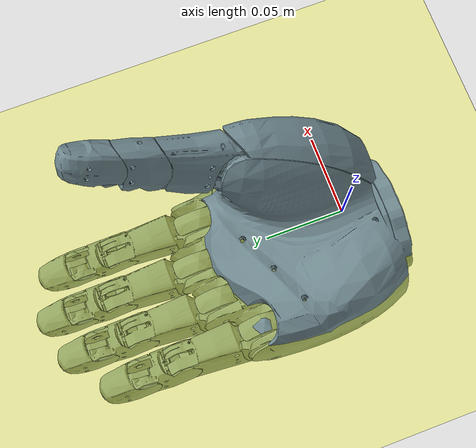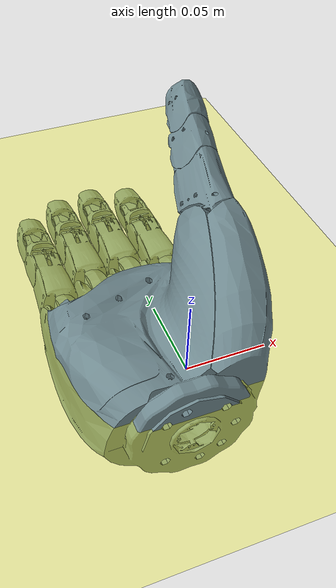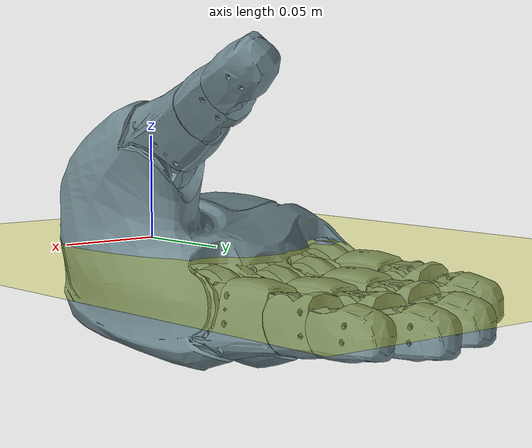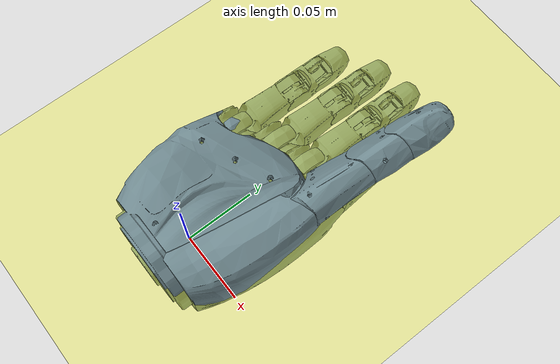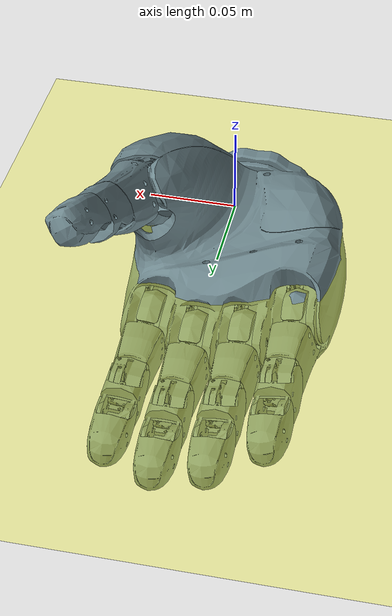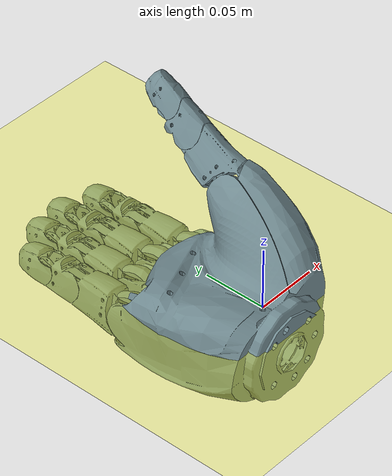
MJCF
<mujoco model="BHAM">
    <option viscosity = "1"/>
    <worldbody>
        <camera fovy="75" name="BHAM.fixed2" pos="1 -1 1" quat='0.924 0.383 0 0' />
        <camera fovy="75" name="BHAM.fixed" pos="1 0 1" euler="0 0 0" />

        <body childclass="BHAM" name="BHAM.floor" pos="0 0 0">
            <inertial diaginertia="0 0 0" mass="0" pos="0 0 0" />
            <geom pos="0 0 0" rgba="1 1 0 1" size="0.5 0.5 0.025" type="plane" friction="0" />
        </body>
        <body childclass="BHAM" name="BHAM.forearm" pos="0 0 0">
            <inertial diaginertia="3.35103e-06 3.35103e-06 5.02655e-06" mass="1" pos="0 0 0" />
            <joint name="BHAM.ARTx" pos="0 0 0" axis="1 0 0" type="slide" range="-2.0 2.0"           damping="80"/>
            <joint name="BHAM.ARTy" pos="0 0 0" axis="0 1 0" type="slide" range="-2 2"          damping="80"/>
            <joint name="BHAM.ARTz" pos="0 0 0" axis="0 0 1" type="slide" range="-1 1"          damping="80"/>
            <joint name="BHAM.ARRx" pos="0 0 0" axis="1 0 0" type="hinge" range="-3.14159 3.14159"  damping="1"  />
            <joint name="BHAM.ARRy" pos="0 0 0" axis="0 1 0" type="hinge" range="-3.14159 3.14159"  damping="1"  />
            <joint name="BHAM.ARRz" pos="0 0 0" axis="0 0 1" type="hinge" range="-3.14159 3.14159"  damping="1"  />
            <body name="BHAM.palm" pos="0 0 0" quat="1 0 0 0">
                <inertial diaginertia="0.00149093 0.00115965 0.00102401" mass="0.801064" pos="-0.00433581 0.0278728 -0.00961453" quat="0.0172605 0.553611 0.101044 0.826443" />
                <geom conaffinity="0" contype="0" mass="0" mesh="BHAM.righthandbase" name="BHAM.righthandbase" type="mesh" />
                <geom mesh="BHAM.palm1" mass="0.9" name="BHAM.palm1" rgba="0 0 0 0" type="mesh" />
                <geom mesh="BHAM.palm2" mass="0.2485" name="BHAM.palm2" rgba="0 0 0 0" type="mesh" />
                <body name="BHAM.thumb0" pos="0 0 0">
                    <inertial diaginertia="1.20581e-5 9.65467e-6 4.22719e-6" mass="0.0176" pos="0.034312 0.0535929 0.0406575" quat="0 0 0 1" />
                    <joint axis="0.549586 -0.456218 0.699872" name="BHAM.thumb_ABD" pos="0.036754 0.056714 0.04474" range="-1 1" />
                    <geom mesh="BHAM.thumb_basecover" name="BHAM.thumb_basecover" type="mesh" />
                    <body name="BHAM.thumb1" pos="0 0 0">
                        <inertial diaginertia="2.47814e-5 2.07636e-5 9.90171e-6" mass="0.0232" pos="0.0437866 0.0847763 0.0603761" quat="0.601855 0.742582 0.23387 -0.177897" />
                        <joint axis="-0.8142 -0.104803 0.571047" name="BHAM.thumb_IN" pos="0.036754 0.056714 0.04474" range="-0.1 0.8" />
                        <geom mesh="BHAM.thumb_proximalp" name="BHAM.thumb_proximalp" type="mesh" />
                        <body name="BHAM.thumb2" pos="0 0 0">
                            <inertial diaginertia="1.17398e-5 1.17052e-5 7.00527e-6" mass="0.0158" pos="0.0503579 0.113562 0.0743528" quat="0.583097 0.776931 -0.222353 0.0832728" />
                            <joint axis="-0.8142 -0.104803 0.571047" name="BHAM.thumb_OUT" pos="0.046615 0.10503 0.06708" range="0.087266 1.2217" />
                            <geom mesh="BHAM.thumb_middlep" name="BHAM.thumb_middlep" type="mesh" />
                            <body name="BHAM.thumb3" pos="0 0 0">
                                <inertial diaginertia="9.09431e-6 8.84306e-6 5.34772e-6" mass="0.0137" pos="0.0539685 0.137464 0.0841294" quat="0.539226 0.69153 -0.410629 0.249812" />
                                <joint axis="-0.8142 -0.104803 0.571047" name="BHAM.thumb_TIP" pos="0.050016 0.12692 0.078691" range="0.087266 1.2217" />
                                <geom mesh="BHAM.thumb_distalp" name="BHAM.thumb_distalp" type="mesh" />
                            </body>
                        </body>
                    </body>
                </body>
                <body name="BHAM.fore0" pos="0 0 0">
                    <inertial diaginertia="1.20581e-5 9.65469e-6 4.22719e-6" mass="0.0176" pos="0.0291766 0.0808036 -0.0172436" quat="0.97727 -0.207392 -0.0430513 -0.00881044" />
                    <joint axis="0.087156 0 -0.996195" name="BHAM.fore_ABD" pos="0.029434 0.08577 -0.020007" range="-0.2618 0.2618" />
                    <geom mesh="BHAM.fore_basecover" name="BHAM.fore_basecover" type="mesh" />
                    <body name="BHAM.fore1" pos="0 0 0">
                        <inertial diaginertia="2.47814e-5 2.07636e-5 9.90172e-6" mass="0.0232" pos="0.0298699 0.118593 -0.0219824" quat="0.587334 0.807596 -0.044716 0.0287853" />
                        <joint axis="0.996195 0 0.087156" name="BHAM.fore_IN" pos="0.029434 0.08577 -0.020007" range="0.087266 1.0471" />
                        <geom mesh="BHAM.fore_proximalp" name="BHAM.fore_proximalp" type="mesh" />
                        <body name="BHAM.fore2" pos="0 0 0">
                            <inertial diaginertia="1.17398e-5 1.17052e-5 7.00528e-6" mass="0.0158" pos="0.0295082 0.151257 -0.022276" quat="0.538583 0.638827 -0.403273 0.373094" />
                            <joint axis="0.996195 0 0.087156" name="BHAM.fore_OUT" pos="0.029014 0.1399 -0.019052" range="0.087266 1.2217" />
                            <geom mesh="BHAM.fore_middlep" name="BHAM.fore_middlep" type="mesh" />
                            <body name="BHAM.fore3" pos="0 0 0">
                                <inertial diaginertia="9.09435e-6 8.84309e-6 5.34772e-6" mass="0.0137" pos="0.0294646 0.17725 -0.0201939" quat="0.416648 0.511765 -0.56981 0.489712" />
                                <joint axis="0.996195 0 0.087156" name="BHAM.fore_TIP" pos="0.030576 0.16486 -0.018924" range="0.087266 1.2217" />
                                <geom mesh="BHAM.fore_distalp" name="BHAM.fore_distalp" type="mesh" />
                            </body>
                        </body>
                    </body>
                </body>
                <body name="BHAM.middle0" pos="0 0 0">
                    <inertial diaginertia="1.20581e-5 9.65469e-6 4.2272e-6" mass="0.0176" pos="0.00261974 0.0908037 -0.0184136" quat="0.978218 -0.20758 -0.000382091 0.000244214" />
                    <joint axis="0 0 -1" name="BHAM.middle_ABD" pos="0.0026354 0.09577 -0.021189" range="-0.2618 0.2618" />
                    <geom mesh="BHAM.middle_basecover" name="BHAM.middle_basecover" type="mesh" />
                    <body name="BHAM.middle1" pos="0 0 0">
                        <inertial diaginertia="2.47814e-5 2.07636e-5 9.90172e-6" mass="0.0232" pos="0.00289744 0.128593 -0.0231948" quat="0.588725 0.808083 -0.0190541 -0.00646947" />
                        <joint axis="1 0 0" name="BHAM.middle_IN" pos="0.0026354 0.09577 -0.021189" range="0.087266 1.0471" />
                        <geom mesh="BHAM.middle_proximalp" name="BHAM.middle_proximalp" type="mesh" />
                        <body name="BHAM.middle2" pos="0 0 0">
                            <inertial diaginertia="1.17397e-5 1.17051e-5 7.00528e-6" mass="0.0158" pos="0.00251156 0.161257 -0.0234557" quat="0.555649 0.654479 -0.379419 0.344894" />
                            <joint axis="1 0 0" name="BHAM.middle_OUT" pos="0.0023 0.1499 -0.020201" range="0.087266 1.2217" />
                            <geom mesh="BHAM.middle_middlep" name="BHAM.middle_middlep" type="mesh" />
                            <body name="BHAM.middle3" pos="0 0 0">
                                <inertial diaginertia="9.09435e-6 8.8431e-6 5.34772e-6" mass="0.0137" pos="0.00264958 0.18725 -0.0213778" quat="0.441105 0.532638 -0.551095 0.466924" />
                                <joint axis="1 0 0" name="BHAM.middle_TIP" pos="0.003867 0.17486 -0.02021" range="0.087266 1.2217" />
                                <geom mesh="BHAM.middle_distalp" name="BHAM.middle_distalp" type="mesh" />
                                <site name="mid_finger_center" pos="0.003867 0.17486 -0.02021"/>
                            </body>
                        </body>
                    </body>
                </body>
                <body name="BHAM.ring0" pos="0 0 0">
                    <inertial diaginertia="1.20581e-5 9.6547e-6 4.2272e-6" mass="0.0176" pos="-0.023938 0.0856037 -0.0172645" quat="0.977304 -0.207372 0.0422874 0.0092984" />
                    <joint axis="-0.0774016 0 -0.997" name="BHAM.ring_ABD" pos="-0.024164 0.09057 -0.020031" range="-0.2618 0.2618" />
                    <geom mesh="BHAM.ring_basecover" name="BHAM.ring_basecover" type="mesh" />
                    <body name="BHAM.ring1" pos="0 0 0">
                        <inertial diaginertia="2.47814e-5 2.07636e-5 9.90172e-6" mass="0.0232" pos="-0.0240781 0.123393 -0.0220517" quat="0.588996 0.807031 0.0066435 -0.0417111" />
                        <joint axis="0.997 0 -0.0774016" name="BHAM.ring_IN" pos="-0.024164 0.09057 -0.020031" range="0.087266 1.0471" />
                        <geom mesh="BHAM.ring_proximalp" name="BHAM.ring_proximalp" type="mesh" />
                        <body name="BHAM.ring2" pos="0 0 0">
                            <inertial diaginertia="1.17397e-5 1.17051e-5 7.00528e-6" mass="0.0158" pos="-0.0244852 0.156057 -0.022278" quat="0.571688 0.668919 -0.354786 0.315986" />
                            <joint axis="0.997 0 -0.0774016" name="BHAM.ring_OUT" pos="-0.024412 0.1447 -0.019017" range="0.087266 1.2217" />
                            <geom mesh="BHAM.ring_middlep" name="BHAM.ring_middlep" type="mesh" />
                            <body name="BHAM.ring3" pos="0 0 0">
                                <inertial diaginertia="9.09435e-6 8.8431e-6 5.34772e-6" mass="0.0137" pos="-0.0241666 0.18205 -0.02022" quat="0.464721 0.552497 -0.531331 0.443248" />
                                <joint axis="0.997 0 -0.0774016" name="BHAM.ring_TIP" pos="-0.022852 0.16966 -0.019162" range="0.087266 1.2217" />
                                <geom mesh="BHAM.ring_distalp" name="BHAM.ring_distalp" type="mesh" />
                            </body>
                        </body>
                    </body>
                </body>
                <body name="BHAM.little0" pos="0 0 0">
                    <inertial diaginertia="1.20581e-5 9.65468e-6 4.22719e-6" mass="0.0176" pos="-0.0502945 0.0666036 -0.0138051" quat="0.97453 -0.206766 0.0848757 0.018333" />
                    <joint axis="-0.166745 0 -0.986" name="BHAM.little_ABD" pos="-0.050761 0.07157 -0.016541" range="-0.2618 0.2618" />
                    <geom mesh="BHAM.little_basecover" name="BHAM.little_basecover" type="mesh" />
                    <body name="BHAM.little1" pos="0 0 0">
                        <inertial diaginertia="2.47814e-5 2.07635e-5 9.90174e-6" mass="0.0232" pos="-0.0508513 0.104393 -0.0185619" quat="0.588146 0.804443 0.0323287 -0.0768729" />
                        <joint axis="0.986 0 -0.166745" name="BHAM.little_IN" pos="-0.050761 0.07157 -0.016541" range="0.087266 1.0471" />
                        <geom mesh="BHAM.little_proximalp" name="BHAM.little_proximalp" type="mesh" />
                        <body name="BHAM.little2" pos="0 0 0">
                            <inertial diaginertia="1.17397e-5 1.17051e-5 7.00528e-6" mass="0.0158" pos="-0.0512766 0.137057 -0.0187519" quat="0.586633 0.682081 -0.329479 0.28648" />
                            <joint axis="0.986 0 -0.166745" name="BHAM.little_OUT" pos="-0.05092 0.1257 -0.015509" range="0.087266 1.2217" />
                            <geom mesh="BHAM.little_middlep" name="BHAM.little_middlep" type="mesh" />
                            <body name="BHAM.little3" pos="0 0 0">
                                <inertial diaginertia="9.09435e-6 8.84309e-6 5.34772e-6" mass="0.0137" pos="-0.0507799 0.16305 -0.0167295" quat="0.487456 0.571303 -0.510555 0.418728" />
                                <joint axis="0.986 0 -0.166745" name="BHAM.little_TIP" pos="-0.049378 0.15066 -0.01579" range="0.087266 1.2217" />
                                <geom mesh="BHAM.little_distalp" name="BHAM.little_distalp" type="mesh" />
                            </body>
                        </body>
                    </body>
                </body>
            </body>
        </body>
    </worldbody>
    <compiler angle="radian" meshdir="./"/>
    <option apirate="50" cone="elliptic" impratio="1.75" integrator="RK4" iterations="50" tolerance="1e-10" />
    <size nconmax="500" njmax="5000" nstack="500000" />
    <statistic center="0 -0.2 0.2" extent="1" />
    <default class="main">
        <default class="BHAM">
            <joint armature="0.001" damping="0.2" limited="true" />
            <geom condim="4" friction="1 0.005 0.005" group="1" material="BHAM.MatMesh" rgba="0.44 0.54 0.565 1" solref="0.008 1" />
            <site group="3" material="BHAM.MatTouch" type="ellipsoid" />
            <general biasprm="0 -1 0 0 0 0 0 0 0 0" biastype="affine" ctrllimited="true" forcelimited="true" forcerange="-1.25 1.25" />
        </default>
        <default class="IMU">
            <site group="4" material="BHAM.MatIMU" type="box" />
        </default>
        <default class="free">
            <joint type="free" />
        </default>
    </default>
    <asset>
        <texture builtin="gradient" height="600" rgb1="0.4 0.6 0.8" rgb2="0 0 0" type="skybox" width="100" />
        <texture builtin="checker" height="100" name="BHAM.groundplane" rgb1="0.2 0.3 0.4" rgb2="0.1 0.2 0.3" type="2d" width="100" />
        <material name="BHAM.MatTouch" rgba="0.3 0.9 0.3 0.3" />
        <material name="BHAM.MatIMU" rgba="0.1 0.1 0.9 1" />
        <material name="BHAM.MatMesh" rgba="0.6 0.6 0.6 1" />
        <mesh file="dlr_mesh/righthandbase.stl" name="BHAM.righthandbase" />
        <mesh file="dlr_mesh/palm_1_cvx.stl" name="BHAM.palm1" />
        <mesh file="dlr_mesh/palm_2_cvx.stl" name="BHAM.palm2" />
        <mesh file="dlr_mesh/fore_basecover.stl" name="BHAM.fore_basecover" />
        <mesh file="dlr_mesh/fore_distalp.stl" name="BHAM.fore_distalp" />
        <mesh file="dlr_mesh/fore_middlep.stl" name="BHAM.fore_middlep" />
        <mesh file="dlr_mesh/fore_proximalp.stl" name="BHAM.fore_proximalp" />
        <mesh file="dlr_mesh/little_basecover.stl" name="BHAM.little_basecover" />
        <mesh file="dlr_mesh/little_distalp.stl" name="BHAM.little_distalp" />
        <mesh file="dlr_mesh/little_middlep.stl" name="BHAM.little_middlep" />
        <mesh file="dlr_mesh/little_proximalp.stl" name="BHAM.little_proximalp" />
        <mesh file="dlr_mesh/middle_basecover.stl" name="BHAM.middle_basecover" />
        <mesh file="dlr_mesh/middle_distalp.stl" name="BHAM.middle_distalp" />
        <mesh file="dlr_mesh/middle_middlep.stl" name="BHAM.middle_middlep" />
        <mesh file="dlr_mesh/middle_proximalp.stl" name="BHAM.middle_proximalp" />
        <mesh file="dlr_mesh/ring_basecover.stl" name="BHAM.ring_basecover" />
        <mesh file="dlr_mesh/ring_distalp.stl" name="BHAM.ring_distalp" />
        <mesh file="dlr_mesh/ring_middlep.stl" name="BHAM.ring_middlep" />
        <mesh file="dlr_mesh/ring_proximalp.stl" name="BHAM.ring_proximalp" />
        <mesh file="dlr_mesh/thumb_basecover.stl" name="BHAM.thumb_basecover" />
        <mesh file="dlr_mesh/thumb_distalp.stl" name="BHAM.thumb_distalp" />
        <mesh file="dlr_mesh/thumb_middlep.stl" name="BHAM.thumb_middlep" />
        <mesh file="dlr_mesh/thumb_proximalp.stl" name="BHAM.thumb_proximalp" />
    </asset>
    <contact>
        <exclude body1="BHAM.palm" body2="BHAM.thumb1" />
        <exclude body1="BHAM.palm" body2="BHAM.fore1" />
        <exclude body1="BHAM.palm" body2="BHAM.middle1" />
        <exclude body1="BHAM.palm" body2="BHAM.ring1" />
        <exclude body1="BHAM.palm" body2="BHAM.little1" />
        <exclude body1="BHAM.floor" body2="BHAM.thumb1" />
        <exclude body1="BHAM.floor" body2="BHAM.fore1" />
        <exclude body1="BHAM.floor" body2="BHAM.middle1" />
        <exclude body1="BHAM.floor" body2="BHAM.ring1" />
        <exclude body1="BHAM.floor" body2="BHAM.little1" />
        <exclude body1="BHAM.floor" body2="BHAM.thumb2" />
        <exclude body1="BHAM.floor" body2="BHAM.fore2" />
        <exclude body1="BHAM.floor" body2="BHAM.middle2" />
        <exclude body1="BHAM.floor" body2="BHAM.ring2" />
        <exclude body1="BHAM.floor" body2="BHAM.little2" />
        <exclude body1="BHAM.floor" body2="BHAM.thumb3" />
        <exclude body1="BHAM.floor" body2="BHAM.fore3" />
        <exclude body1="BHAM.floor" body2="BHAM.middle3" />
        <exclude body1="BHAM.floor" body2="BHAM.ring3" />
        <exclude body1="BHAM.floor" body2="BHAM.little3" />
        <exclude body1="BHAM.floor" body2="BHAM.palm" />
        <exclude body1="BHAM.floor" body2="BHAM.forearm" />
    </contact>
    <equality>
        <joint joint1="BHAM.thumb_OUT" joint2="BHAM.thumb_TIP" polycoef="0 1 0 0 0" />
        <joint joint1="BHAM.fore_OUT" joint2="BHAM.fore_TIP" polycoef="0 1 0 0 0" />
        <joint joint1="BHAM.middle_OUT" joint2="BHAM.middle_TIP" polycoef="0 1 0 0 0" />
        <joint joint1="BHAM.ring_OUT" joint2="BHAM.ring_TIP" polycoef="0 1 0 0 0" />
        <joint joint1="BHAM.little_OUT" joint2="BHAM.little_TIP" polycoef="0 1 0 0 0" />
    </equality>
    <actuator>
        <position class="BHAM" ctrlrange="-2.0 2.0"          joint="BHAM.ARTx"       forcerange="-100 100"    kp="3000"  name="BHAM.A_ARTx" />
        <position class="BHAM" ctrlrange="-2.0 2.0"         joint="BHAM.ARTy"       forcerange="-100 100"    kp="3000"  name="BHAM.A_ARTy" />
        <position class="BHAM" ctrlrange="-1 1"              joint="BHAM.ARTz"       forcerange="-100 100"    kp="3000"  name="BHAM.A_ARTz" />
        <position class="BHAM" ctrlrange="-3.14159 3.14159" joint="BHAM.ARRx"       forcerange="-100 100"    kp="30"    name="BHAM.A_ARRx" />
        <position class="BHAM" ctrlrange="-3.14159 3.14159" joint="BHAM.ARRy"       forcerange="-100 100"    kp="30"    name="BHAM.A_ARRy" />
        <position class="BHAM" ctrlrange="-3.14159 3.14159" joint="BHAM.ARRz"       forcerange="-100 100"    kp="30"    name="BHAM.A_ARRz" />
        <position class="BHAM" ctrlrange="-3.14159 3.14159"   joint="BHAM.thumb_ABD" forcerange="-5 5"    kp="2000"  name="BHAM.A_thumb_ABD" />
        <position class="BHAM" ctrlrange="-3.14159 3.14159"  joint="BHAM.thumb_IN"   forcerange="-5 5"    kp="2000"  name="BHAM.A_thumb_IN" />
        <position class="BHAM" ctrlrange="-3.14159 3.14159"  joint="BHAM.thumb_OUT"  forcerange="-5 5"    kp="2000"  name="BHAM.A_thumb_OUT" />
        <position class="BHAM" ctrlrange="-0.2618 0.2618"   joint="BHAM.fore_ABD"    forcerange="-5 5"    kp="2000"  name="BHAM.A_fore_ABD" />
        <position class="BHAM" ctrlrange="0.087266 1.0471"  joint="BHAM.fore_IN"     forcerange="-5 5"    kp="2000"  name="BHAM.A_fore_IN" />
        <position class="BHAM" ctrlrange="0.087266 1.2217"  joint="BHAM.fore_OUT"    forcerange="-5 5"    kp="2000"  name="BHAM.A_fore_OUT" />
        <position class="BHAM" ctrlrange="-0.2618 0.2618"   joint="BHAM.middle_ABD"  forcerange="-5 5"    kp="2000"  name="BHAM.A_middle_ABD" />
        <position class="BHAM" ctrlrange="0.087266 1.0471"  joint="BHAM.middle_IN"   forcerange="-5 5"    kp="2000"  name="BHAM.A_middle_IN" />
        <position class="BHAM" ctrlrange="0.087266 1.2217"  joint="BHAM.middle_OUT"  forcerange="-5 5"    kp="2000"  name="BHAM.A_middle_OUT" />
        <position class="BHAM" ctrlrange="-0.2618 0.2618"   joint="BHAM.ring_ABD"    forcerange="-5 5"    kp="2000"  name="BHAM.A_ring_ABD" />
        <position class="BHAM" ctrlrange="0.087266 1.0471"  joint="BHAM.ring_IN"     forcerange="-5 5"    kp="2000"  name="BHAM.A_ring_IN" />
        <position class="BHAM" ctrlrange="0.087266 1.2217"  joint="BHAM.ring_OUT"    forcerange="-5 5"    kp="2000"  name="BHAM.A_ring_OUT" />
        <position class="BHAM" ctrlrange="-0.2618 0.2618"   joint="BHAM.little_ABD"  forcerange="-5 5"    kp="2000"  name="BHAM.A_little_ABD" />
        <position class="BHAM" ctrlrange="0.087266 1.0471"  joint="BHAM.little_IN"   forcerange="-5 5"    kp="2000"  name="BHAM.A_little_IN" />
        <position class="BHAM" ctrlrange="0.087266 1.2217"  joint="BHAM.little_OUT"  forcerange="-5 5"    kp="2000"  name="BHAM.A_little_OUT" />
    </actuator>
</mujoco>
